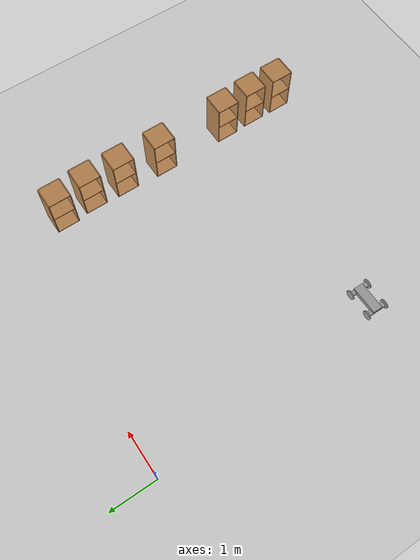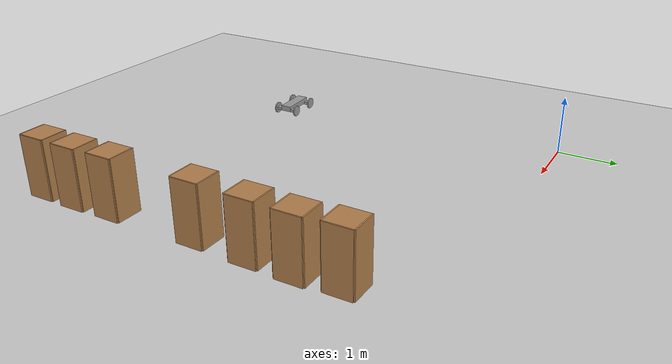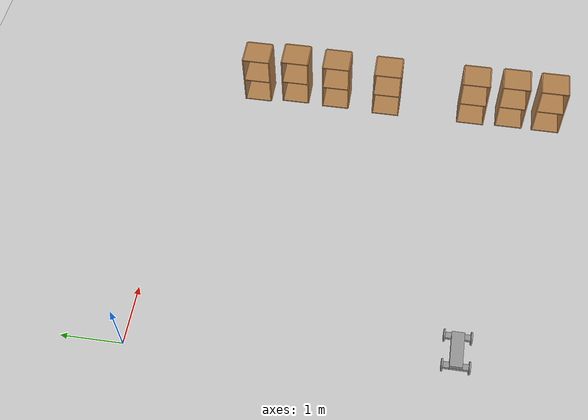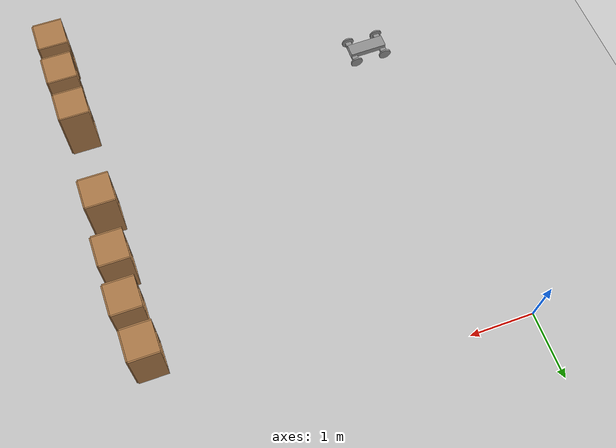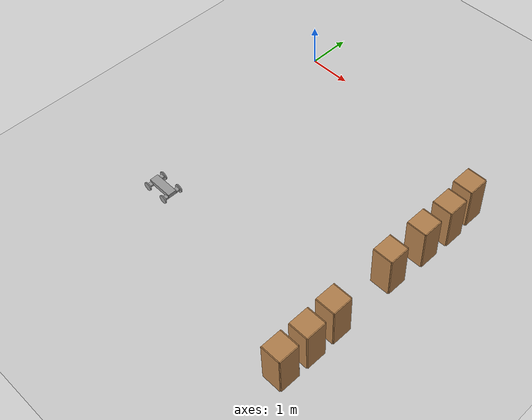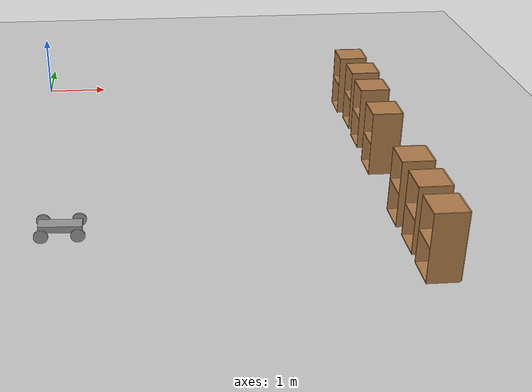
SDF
<sdf version="1.6">
 <world name="default">
  <model name="ground_plane">
   <static>1</static>
   <link name="link">
    <collision name="collision">
     <geometry><plane><normal>0 0 1</normal><size>100 100</size></plane></geometry>
     <surface>
      <contact><collide_bitmask>65535</collide_bitmask></contact>
      <friction><ode><mu>100</mu><mu2>50</mu2></ode></friction>
     </surface>
    </collision>
    <visual name="visual">
     <cast_shadows>0</cast_shadows>
     <geometry><plane><normal>0 0 1</normal><size>100 100</size></plane></geometry>
     <material>
      <script><uri>file://media/materials/scripts/gazebo.material</uri><name>Gazebo/Grey</name></script>
     </material>
    </visual>
   </link>
  </model>
  <model name="cabinet">
   <static>1</static>
   <link name="cabinet_bottom_plate">
    <inertial>
     <pose>0 0 -1 0 -0 0</pose>
     <inertia><ixx>2.05</ixx><ixy>0</ixy><ixz>0</ixz><iyy>2.05</iyy><iyz>0</iyz><izz>2.05</izz></inertia>
     <mass>25</mass>
    </inertial>
    <collision name="cabinet_bottom_plate_geom">
     <pose>0 0 0.01 0 -0 0</pose>
     <geometry><box><size>0.45 0.45 0.02</size></box></geometry>
    </collision>
    <visual name="cabinet_bottom_plate_geom_visual">
     <pose>0 0 0.01 0 -0 0</pose>
     <geometry><box><size>0.45 0.45 0.02</size></box></geometry>
     <material>
      <script><uri>file://media/materials/scripts/gazebo.material</uri><name>Gazebo/Wood</name></script>
     </material>
    </visual>
    <collision name="cabinet_bottom_plate_geom_cabinet_back_plate">
     <pose>0.235 0 0.51 0 -0 0</pose>
     <geometry><box><size>0.02 0.45 1.02</size></box></geometry>
    </collision>
    <visual name="cabinet_bottom_plate_geom_cabinet_back_plate_visual">
     <pose>0.235 0 0.51 0 -0 0</pose>
     <geometry><box><size>0.02 0.45 1.02</size></box></geometry>
     <material>
      <script><uri>file://media/materials/scripts/gazebo.material</uri><name>Gazebo/Wood</name></script>
     </material>
    </visual>
    <collision name="cabinet_bottom_plate_geom_cabinet_left_plate">
     <pose>0 0.235 0.51 0 -0 0</pose>
     <geometry><box><size>0.45 0.02 1.02</size></box></geometry>
    </collision>
    <visual name="cabinet_bottom_plate_geom_cabinet_left_plate_visual">
     <pose>0 0.235 0.51 0 -0 0</pose>
     <geometry><box><size>0.45 0.02 1.02</size></box></geometry>
     <material>
      <script><uri>file://media/materials/scripts/gazebo.material</uri><name>Gazebo/Wood</name></script>
     </material>
    </visual>
    <collision name="cabinet_bottom_plate_geom_cabinet_middle_plate">
     <pose>0 0 0.51 0 -0 0</pose>
     <geometry><box><size>0.45 0.45 0.02</size></box></geometry>
    </collision>
    <visual name="cabinet_bottom_plate_geom_cabinet_middle_plate_visual">
     <pose>0 0 0.51 0 -0 0</pose>
     <geometry><box><size>0.45 0.45 0.02</size></box></geometry>
     <material>
      <script><uri>file://media/materials/scripts/gazebo.material</uri><name>Gazebo/Wood</name></script>
     </material>
    </visual>
    <collision name="cabinet_bottom_plate_geom_cabinet_right_plate">
     <pose>0 -0.235 0.51 0 -0 0</pose>
     <geometry><box><size>0.45 0.02 1.02</size></box></geometry>
    </collision>
    <visual name="cabinet_bottom_plate_geom_cabinet_right_plate_visual">
     <pose>0 -0.235 0.51 0 -0 0</pose>
     <geometry><box><size>0.45 0.02 1.02</size></box></geometry>
     <material>
      <script><uri>file://media/materials/scripts/gazebo.material</uri><name>Gazebo/Wood</name></script>
     </material>
    </visual>
    <collision name="cabinet_bottom_plate_geom_cabinet_top_plate">
     <pose>0 0 1.01 0 -0 0</pose>
     <geometry><box><size>0.45 0.45 0.02</size></box></geometry>
    </collision>
    <visual name="cabinet_bottom_plate_geom_cabinet_top_plate_visual">
     <pose>0 0 1.01 0 -0 0</pose>
     <geometry><box><size>0.45 0.45 0.02</size></box></geometry>
     <material>
      <script><uri>file://media/materials/scripts/gazebo.material</uri><name>Gazebo/Wood</name></script>
     </material>
    </visual>
   </link>
   <pose>5.45289 -6.41094 0 0 -0 0</pose>
  </model>
  <model name="cabinet_0">
   <static>1</static>
   <link name="cabinet_bottom_plate">
    <inertial>
     <pose>0 0 -1 0 -0 0</pose>
     <inertia><ixx>2.05</ixx><ixy>0</ixy><ixz>0</ixz><iyy>2.05</iyy><iyz>0</iyz><izz>2.05</izz></inertia>
     <mass>25</mass>
    </inertial>
    <collision name="cabinet_bottom_plate_geom">
     <pose>0 0 0.01 0 -0 0</pose>
     <geometry><box><size>0.45 0.45 0.02</size></box></geometry>
    </collision>
    <visual name="cabinet_bottom_plate_geom_visual">
     <pose>0 0 0.01 0 -0 0</pose>
     <geometry><box><size>0.45 0.45 0.02</size></box></geometry>
     <material>
      <script><uri>file://media/materials/scripts/gazebo.material</uri><name>Gazebo/Wood</name></script>
     </material>
    </visual>
    <collision name="cabinet_bottom_plate_geom_cabinet_back_plate">
     <pose>0.235 0 0.51 0 -0 0</pose>
     <geometry><box><size>0.02 0.45 1.02</size></box></geometry>
    </collision>
    <visual name="cabinet_bottom_plate_geom_cabinet_back_plate_visual">
     <pose>0.235 0 0.51 0 -0 0</pose>
     <geometry><box><size>0.02 0.45 1.02</size></box></geometry>
     <material>
      <script><uri>file://media/materials/scripts/gazebo.material</uri><name>Gazebo/Wood</name></script>
     </material>
    </visual>
    <collision name="cabinet_bottom_plate_geom_cabinet_left_plate">
     <pose>0 0.235 0.51 0 -0 0</pose>
     <geometry><box><size>0.45 0.02 1.02</size></box></geometry>
    </collision>
    <visual name="cabinet_bottom_plate_geom_cabinet_left_plate_visual">
     <pose>0 0.235 0.51 0 -0 0</pose>
     <geometry><box><size>0.45 0.02 1.02</size></box></geometry>
     <material>
      <script><uri>file://media/materials/scripts/gazebo.material</uri><name>Gazebo/Wood</name></script>
     </material>
    </visual>
    <collision name="cabinet_bottom_plate_geom_cabinet_middle_plate">
     <pose>0 0 0.51 0 -0 0</pose>
     <geometry><box><size>0.45 0.45 0.02</size></box></geometry>
    </collision>
    <visual name="cabinet_bottom_plate_geom_cabinet_middle_plate_visual">
     <pose>0 0 0.51 0 -0 0</pose>
     <geometry><box><size>0.45 0.45 0.02</size></box></geometry>
     <material>
      <script><uri>file://media/materials/scripts/gazebo.material</uri><name>Gazebo/Wood</name></script>
     </material>
    </visual>
    <collision name="cabinet_bottom_plate_geom_cabinet_right_plate">
     <pose>0 -0.235 0.51 0 -0 0</pose>
     <geometry><box><size>0.45 0.02 1.02</size></box></geometry>
    </collision>
    <visual name="cabinet_bottom_plate_geom_cabinet_right_plate_visual">
     <pose>0 -0.235 0.51 0 -0 0</pose>
     <geometry><box><size>0.45 0.02 1.02</size></box></geometry>
     <material>
      <script><uri>file://media/materials/scripts/gazebo.material</uri><name>Gazebo/Wood</name></script>
     </material>
    </visual>
    <collision name="cabinet_bottom_plate_geom_cabinet_top_plate">
     <pose>0 0 1.01 0 -0 0</pose>
     <geometry><box><size>0.45 0.45 0.02</size></box></geometry>
    </collision>
    <visual name="cabinet_bottom_plate_geom_cabinet_top_plate_visual">
     <pose>0 0 1.01 0 -0 0</pose>
     <geometry><box><size>0.45 0.45 0.02</size></box></geometry>
     <material>
      <script><uri>file://media/materials/scripts/gazebo.material</uri><name>Gazebo/Wood</name></script>
     </material>
    </visual>
   </link>
   <pose>5.4602 -5.75038 0 0 -0 0</pose>
  </model>
  <model name="cabinet_1">
   <static>1</static>
   <link name="cabinet_bottom_plate">
    <inertial>
     <pose>0 0 -1 0 -0 0</pose>
     <inertia><ixx>2.05</ixx><ixy>0</ixy><ixz>0</ixz><iyy>2.05</iyy><iyz>0</iyz><izz>2.05</izz></inertia>
     <mass>25</mass>
    </inertial>
    <collision name="cabinet_bottom_plate_geom">
     <pose>0 0 0.01 0 -0 0</pose>
     <geometry><box><size>0.45 0.45 0.02</size></box></geometry>
    </collision>
    <visual name="cabinet_bottom_plate_geom_visual">
     <pose>0 0 0.01 0 -0 0</pose>
     <geometry><box><size>0.45 0.45 0.02</size></box></geometry>
     <material>
      <script><uri>file://media/materials/scripts/gazebo.material</uri><name>Gazebo/Wood</name></script>
     </material>
    </visual>
    <collision name="cabinet_bottom_plate_geom_cabinet_back_plate">
     <pose>0.235 0 0.51 0 -0 0</pose>
     <geometry><box><size>0.02 0.45 1.02</size></box></geometry>
    </collision>
    <visual name="cabinet_bottom_plate_geom_cabinet_back_plate_visual">
     <pose>0.235 0 0.51 0 -0 0</pose>
     <geometry><box><size>0.02 0.45 1.02</size></box></geometry>
     <material>
      <script><uri>file://media/materials/scripts/gazebo.material</uri><name>Gazebo/Wood</name></script>
     </material>
    </visual>
    <collision name="cabinet_bottom_plate_geom_cabinet_left_plate">
     <pose>0 0.235 0.51 0 -0 0</pose>
     <geometry><box><size>0.45 0.02 1.02</size></box></geometry>
    </collision>
    <visual name="cabinet_bottom_plate_geom_cabinet_left_plate_visual">
     <pose>0 0.235 0.51 0 -0 0</pose>
     <geometry><box><size>0.45 0.02 1.02</size></box></geometry>
     <material>
      <script><uri>file://media/materials/scripts/gazebo.material</uri><name>Gazebo/Wood</name></script>
     </material>
    </visual>
    <collision name="cabinet_bottom_plate_geom_cabinet_middle_plate">
     <pose>0 0 0.51 0 -0 0</pose>
     <geometry><box><size>0.45 0.45 0.02</size></box></geometry>
    </collision>
    <visual name="cabinet_bottom_plate_geom_cabinet_middle_plate_visual">
     <pose>0 0 0.51 0 -0 0</pose>
     <geometry><box><size>0.45 0.45 0.02</size></box></geometry>
     <material>
      <script><uri>file://media/materials/scripts/gazebo.material</uri><name>Gazebo/Wood</name></script>
     </material>
    </visual>
    <collision name="cabinet_bottom_plate_geom_cabinet_right_plate">
     <pose>0 -0.235 0.51 0 -0 0</pose>
     <geometry><box><size>0.45 0.02 1.02</size></box></geometry>
    </collision>
    <visual name="cabinet_bottom_plate_geom_cabinet_right_plate_visual">
     <pose>0 -0.235 0.51 0 -0 0</pose>
     <geometry><box><size>0.45 0.02 1.02</size></box></geometry>
     <material>
      <script><uri>file://media/materials/scripts/gazebo.material</uri><name>Gazebo/Wood</name></script>
     </material>
    </visual>
    <collision name="cabinet_bottom_plate_geom_cabinet_top_plate">
     <pose>0 0 1.01 0 -0 0</pose>
     <geometry><box><size>0.45 0.45 0.02</size></box></geometry>
    </collision>
    <visual name="cabinet_bottom_plate_geom_cabinet_top_plate_visual">
     <pose>0 0 1.01 0 -0 0</pose>
     <geometry><box><size>0.45 0.45 0.02</size></box></geometry>
     <material>
      <script><uri>file://media/materials/scripts/gazebo.material</uri><name>Gazebo/Wood</name></script>
     </material>
    </visual>
   </link>
   <pose>5.43996 -5.05539 0 0 -0 0</pose>
  </model>
  <model name="cabinet_2">
   <static>1</static>
   <link name="cabinet_bottom_plate">
    <inertial>
     <pose>0 0 -1 0 -0 0</pose>
     <inertia><ixx>2.05</ixx><ixy>0</ixy><ixz>0</ixz><iyy>2.05</iyy><iyz>0</iyz><izz>2.05</izz></inertia>
     <mass>25</mass>
    </inertial>
    <collision name="cabinet_bottom_plate_geom">
     <pose>0 0 0.01 0 -0 0</pose>
     <geometry><box><size>0.45 0.45 0.02</size></box></geometry>
    </collision>
    <visual name="cabinet_bottom_plate_geom_visual">
     <pose>0 0 0.01 0 -0 0</pose>
     <geometry><box><size>0.45 0.45 0.02</size></box></geometry>
     <material>
      <script><uri>file://media/materials/scripts/gazebo.material</uri><name>Gazebo/Wood</name></script>
     </material>
    </visual>
    <collision name="cabinet_bottom_plate_geom_cabinet_back_plate">
     <pose>0.235 0 0.51 0 -0 0</pose>
     <geometry><box><size>0.02 0.45 1.02</size></box></geometry>
    </collision>
    <visual name="cabinet_bottom_plate_geom_cabinet_back_plate_visual">
     <pose>0.235 0 0.51 0 -0 0</pose>
     <geometry><box><size>0.02 0.45 1.02</size></box></geometry>
     <material>
      <script><uri>file://media/materials/scripts/gazebo.material</uri><name>Gazebo/Wood</name></script>
     </material>
    </visual>
    <collision name="cabinet_bottom_plate_geom_cabinet_left_plate">
     <pose>0 0.235 0.51 0 -0 0</pose>
     <geometry><box><size>0.45 0.02 1.02</size></box></geometry>
    </collision>
    <visual name="cabinet_bottom_plate_geom_cabinet_left_plate_visual">
     <pose>0 0.235 0.51 0 -0 0</pose>
     <geometry><box><size>0.45 0.02 1.02</size></box></geometry>
     <material>
      <script><uri>file://media/materials/scripts/gazebo.material</uri><name>Gazebo/Wood</name></script>
     </material>
    </visual>
    <collision name="cabinet_bottom_plate_geom_cabinet_middle_plate">
     <pose>0 0 0.51 0 -0 0</pose>
     <geometry><box><size>0.45 0.45 0.02</size></box></geometry>
    </collision>
    <visual name="cabinet_bottom_plate_geom_cabinet_middle_plate_visual">
     <pose>0 0 0.51 0 -0 0</pose>
     <geometry><box><size>0.45 0.45 0.02</size></box></geometry>
     <material>
      <script><uri>file://media/materials/scripts/gazebo.material</uri><name>Gazebo/Wood</name></script>
     </material>
    </visual>
    <collision name="cabinet_bottom_plate_geom_cabinet_right_plate">
     <pose>0 -0.235 0.51 0 -0 0</pose>
     <geometry><box><size>0.45 0.02 1.02</size></box></geometry>
    </collision>
    <visual name="cabinet_bottom_plate_geom_cabinet_right_plate_visual">
     <pose>0 -0.235 0.51 0 -0 0</pose>
     <geometry><box><size>0.45 0.02 1.02</size></box></geometry>
     <material>
      <script><uri>file://media/materials/scripts/gazebo.material</uri><name>Gazebo/Wood</name></script>
     </material>
    </visual>
    <collision name="cabinet_bottom_plate_geom_cabinet_top_plate">
     <pose>0 0 1.01 0 -0 0</pose>
     <geometry><box><size>0.45 0.45 0.02</size></box></geometry>
    </collision>
    <visual name="cabinet_bottom_plate_geom_cabinet_top_plate_visual">
     <pose>0 0 1.01 0 -0 0</pose>
     <geometry><box><size>0.45 0.45 0.02</size></box></geometry>
     <material>
      <script><uri>file://media/materials/scripts/gazebo.material</uri><name>Gazebo/Wood</name></script>
     </material>
    </visual>
   </link>
   <pose>5.4302 -3.50598 0 0 -0 0</pose>
  </model>
  <model name="cabinet_3">
   <static>1</static>
   <link name="cabinet_bottom_plate">
    <inertial>
     <pose>0 0 -1 0 -0 0</pose>
     <inertia><ixx>2.05</ixx><ixy>0</ixy><ixz>0</ixz><iyy>2.05</iyy><iyz>0</iyz><izz>2.05</izz></inertia>
     <mass>25</mass>
    </inertial>
    <collision name="cabinet_bottom_plate_geom">
     <pose>0 0 0.01 0 -0 0</pose>
     <geometry><box><size>0.45 0.45 0.02</size></box></geometry>
    </collision>
    <visual name="cabinet_bottom_plate_geom_visual">
     <pose>0 0 0.01 0 -0 0</pose>
     <geometry><box><size>0.45 0.45 0.02</size></box></geometry>
     <material>
      <script><uri>file://media/materials/scripts/gazebo.material</uri><name>Gazebo/Wood</name></script>
     </material>
    </visual>
    <collision name="cabinet_bottom_plate_geom_cabinet_back_plate">
     <pose>0.235 0 0.51 0 -0 0</pose>
     <geometry><box><size>0.02 0.45 1.02</size></box></geometry>
    </collision>
    <visual name="cabinet_bottom_plate_geom_cabinet_back_plate_visual">
     <pose>0.235 0 0.51 0 -0 0</pose>
     <geometry><box><size>0.02 0.45 1.02</size></box></geometry>
     <material>
      <script><uri>file://media/materials/scripts/gazebo.material</uri><name>Gazebo/Wood</name></script>
     </material>
    </visual>
    <collision name="cabinet_bottom_plate_geom_cabinet_left_plate">
     <pose>0 0.235 0.51 0 -0 0</pose>
     <geometry><box><size>0.45 0.02 1.02</size></box></geometry>
    </collision>
    <visual name="cabinet_bottom_plate_geom_cabinet_left_plate_visual">
     <pose>0 0.235 0.51 0 -0 0</pose>
     <geometry><box><size>0.45 0.02 1.02</size></box></geometry>
     <material>
      <script><uri>file://media/materials/scripts/gazebo.material</uri><name>Gazebo/Wood</name></script>
     </material>
    </visual>
    <collision name="cabinet_bottom_plate_geom_cabinet_middle_plate">
     <pose>0 0 0.51 0 -0 0</pose>
     <geometry><box><size>0.45 0.45 0.02</size></box></geometry>
    </collision>
    <visual name="cabinet_bottom_plate_geom_cabinet_middle_plate_visual">
     <pose>0 0 0.51 0 -0 0</pose>
     <geometry><box><size>0.45 0.45 0.02</size></box></geometry>
     <material>
      <script><uri>file://media/materials/scripts/gazebo.material</uri><name>Gazebo/Wood</name></script>
     </material>
    </visual>
    <collision name="cabinet_bottom_plate_geom_cabinet_right_plate">
     <pose>0 -0.235 0.51 0 -0 0</pose>
     <geometry><box><size>0.45 0.02 1.02</size></box></geometry>
    </collision>
    <visual name="cabinet_bottom_plate_geom_cabinet_right_plate_visual">
     <pose>0 -0.235 0.51 0 -0 0</pose>
     <geometry><box><size>0.45 0.02 1.02</size></box></geometry>
     <material>
      <script><uri>file://media/materials/scripts/gazebo.material</uri><name>Gazebo/Wood</name></script>
     </material>
    </visual>
    <collision name="cabinet_bottom_plate_geom_cabinet_top_plate">
     <pose>0 0 1.01 0 -0 0</pose>
     <geometry><box><size>0.45 0.45 0.02</size></box></geometry>
    </collision>
    <visual name="cabinet_bottom_plate_geom_cabinet_top_plate_visual">
     <pose>0 0 1.01 0 -0 0</pose>
     <geometry><box><size>0.45 0.45 0.02</size></box></geometry>
     <material>
      <script><uri>file://media/materials/scripts/gazebo.material</uri><name>Gazebo/Wood</name></script>
     </material>
    </visual>
   </link>
   <pose>5.46499 -2.58027 0 0 -0 0</pose>
  </model>
  <model name="cabinet_4">
   <static>1</static>
   <link name="cabinet_bottom_plate">
    <inertial>
     <pose>0 0 -1 0 -0 0</pose>
     <inertia><ixx>2.05</ixx><ixy>0</ixy><ixz>0</ixz><iyy>2.05</iyy><iyz>0</iyz><izz>2.05</izz></inertia>
     <mass>25</mass>
    </inertial>
    <collision name="cabinet_bottom_plate_geom">
     <pose>0 0 0.01 0 -0 0</pose>
     <geometry><box><size>0.45 0.45 0.02</size></box></geometry>
    </collision>
    <visual name="cabinet_bottom_plate_geom_visual">
     <pose>0 0 0.01 0 -0 0</pose>
     <geometry><box><size>0.45 0.45 0.02</size></box></geometry>
     <material>
      <script><uri>file://media/materials/scripts/gazebo.material</uri><name>Gazebo/Wood</name></script>
     </material>
    </visual>
    <collision name="cabinet_bottom_plate_geom_cabinet_back_plate">
     <pose>0.235 0 0.51 0 -0 0</pose>
     <geometry><box><size>0.02 0.45 1.02</size></box></geometry>
    </collision>
    <visual name="cabinet_bottom_plate_geom_cabinet_back_plate_visual">
     <pose>0.235 0 0.51 0 -0 0</pose>
     <geometry><box><size>0.02 0.45 1.02</size></box></geometry>
     <material>
      <script><uri>file://media/materials/scripts/gazebo.material</uri><name>Gazebo/Wood</name></script>
     </material>
    </visual>
    <collision name="cabinet_bottom_plate_geom_cabinet_left_plate">
     <pose>0 0.235 0.51 0 -0 0</pose>
     <geometry><box><size>0.45 0.02 1.02</size></box></geometry>
    </collision>
    <visual name="cabinet_bottom_plate_geom_cabinet_left_plate_visual">
     <pose>0 0.235 0.51 0 -0 0</pose>
     <geometry><box><size>0.45 0.02 1.02</size></box></geometry>
     <material>
      <script><uri>file://media/materials/scripts/gazebo.material</uri><name>Gazebo/Wood</name></script>
     </material>
    </visual>
    <collision name="cabinet_bottom_plate_geom_cabinet_middle_plate">
     <pose>0 0 0.51 0 -0 0</pose>
     <geometry><box><size>0.45 0.45 0.02</size></box></geometry>
    </collision>
    <visual name="cabinet_bottom_plate_geom_cabinet_middle_plate_visual">
     <pose>0 0 0.51 0 -0 0</pose>
     <geometry><box><size>0.45 0.45 0.02</size></box></geometry>
     <material>
      <script><uri>file://media/materials/scripts/gazebo.material</uri><name>Gazebo/Wood</name></script>
     </material>
    </visual>
    <collision name="cabinet_bottom_plate_geom_cabinet_right_plate">
     <pose>0 -0.235 0.51 0 -0 0</pose>
     <geometry><box><size>0.45 0.02 1.02</size></box></geometry>
    </collision>
    <visual name="cabinet_bottom_plate_geom_cabinet_right_plate_visual">
     <pose>0 -0.235 0.51 0 -0 0</pose>
     <geometry><box><size>0.45 0.02 1.02</size></box></geometry>
     <material>
      <script><uri>file://media/materials/scripts/gazebo.material</uri><name>Gazebo/Wood</name></script>
     </material>
    </visual>
    <collision name="cabinet_bottom_plate_geom_cabinet_top_plate">
     <pose>0 0 1.01 0 -0 0</pose>
     <geometry><box><size>0.45 0.45 0.02</size></box></geometry>
    </collision>
    <visual name="cabinet_bottom_plate_geom_cabinet_top_plate_visual">
     <pose>0 0 1.01 0 -0 0</pose>
     <geometry><box><size>0.45 0.45 0.02</size></box></geometry>
     <material>
      <script><uri>file://media/materials/scripts/gazebo.material</uri><name>Gazebo/Wood</name></script>
     </material>
    </visual>
   </link>
   <pose>5.48756 -1.83989 0 0 -0 0</pose>
  </model>
  <model name="cabinet_5">
   <static>1</static>
   <link name="cabinet_bottom_plate">
    <inertial>
     <pose>0 0 -1 0 -0 0</pose>
     <inertia><ixx>2.05</ixx><ixy>0</ixy><ixz>0</ixz><iyy>2.05</iyy><iyz>0</iyz><izz>2.05</izz></inertia>
     <mass>25</mass>
    </inertial>
    <collision name="cabinet_bottom_plate_geom">
     <pose>0 0 0.01 0 -0 0</pose>
     <geometry><box><size>0.45 0.45 0.02</size></box></geometry>
    </collision>
    <visual name="cabinet_bottom_plate_geom_visual">
     <pose>0 0 0.01 0 -0 0</pose>
     <geometry><box><size>0.45 0.45 0.02</size></box></geometry>
     <material>
      <script><uri>file://media/materials/scripts/gazebo.material</uri><name>Gazebo/Wood</name></script>
     </material>
    </visual>
    <collision name="cabinet_bottom_plate_geom_cabinet_back_plate">
     <pose>0.235 0 0.51 0 -0 0</pose>
     <geometry><box><size>0.02 0.45 1.02</size></box></geometry>
    </collision>
    <visual name="cabinet_bottom_plate_geom_cabinet_back_plate_visual">
     <pose>0.235 0 0.51 0 -0 0</pose>
     <geometry><box><size>0.02 0.45 1.02</size></box></geometry>
     <material>
      <script><uri>file://media/materials/scripts/gazebo.material</uri><name>Gazebo/Wood</name></script>
     </material>
    </visual>
    <collision name="cabinet_bottom_plate_geom_cabinet_left_plate">
     <pose>0 0.235 0.51 0 -0 0</pose>
     <geometry><box><size>0.45 0.02 1.02</size></box></geometry>
    </collision>
    <visual name="cabinet_bottom_plate_geom_cabinet_left_plate_visual">
     <pose>0 0.235 0.51 0 -0 0</pose>
     <geometry><box><size>0.45 0.02 1.02</size></box></geometry>
     <material>
      <script><uri>file://media/materials/scripts/gazebo.material</uri><name>Gazebo/Wood</name></script>
     </material>
    </visual>
    <collision name="cabinet_bottom_plate_geom_cabinet_middle_plate">
     <pose>0 0 0.51 0 -0 0</pose>
     <geometry><box><size>0.45 0.45 0.02</size></box></geometry>
    </collision>
    <visual name="cabinet_bottom_plate_geom_cabinet_middle_plate_visual">
     <pose>0 0 0.51 0 -0 0</pose>
     <geometry><box><size>0.45 0.45 0.02</size></box></geometry>
     <material>
      <script><uri>file://media/materials/scripts/gazebo.material</uri><name>Gazebo/Wood</name></script>
     </material>
    </visual>
    <collision name="cabinet_bottom_plate_geom_cabinet_right_plate">
     <pose>0 -0.235 0.51 0 -0 0</pose>
     <geometry><box><size>0.45 0.02 1.02</size></box></geometry>
    </collision>
    <visual name="cabinet_bottom_plate_geom_cabinet_right_plate_visual">
     <pose>0 -0.235 0.51 0 -0 0</pose>
     <geometry><box><size>0.45 0.02 1.02</size></box></geometry>
     <material>
      <script><uri>file://media/materials/scripts/gazebo.material</uri><name>Gazebo/Wood</name></script>
     </material>
    </visual>
    <collision name="cabinet_bottom_plate_geom_cabinet_top_plate">
     <pose>0 0 1.01 0 -0 0</pose>
     <geometry><box><size>0.45 0.45 0.02</size></box></geometry>
    </collision>
    <visual name="cabinet_bottom_plate_geom_cabinet_top_plate_visual">
     <pose>0 0 1.01 0 -0 0</pose>
     <geometry><box><size>0.45 0.45 0.02</size></box></geometry>
     <material>
      <script><uri>file://media/materials/scripts/gazebo.material</uri><name>Gazebo/Wood</name></script>
     </material>
    </visual>
   </link>
   <pose>5.43526 -1.15089 0 0 -0 0</pose>
  </model>
  <model name="Four_Wheel_Model_0">
   <link name="link_0">
    <pose>0 0 0.2 -6e-06 -0 1.5e-05</pose>
    <inertial>
     <mass>1</mass>
     <inertia>
      <ixx>0.166667</ixx>
      <ixy>0</ixy>
      <ixz>0</ixz>
      <iyy>0.166667</iyy>
      <iyz>0</iyz>
      <izz>0.166667</izz>
     </inertia>
    </inertial>
    <visual name="visual">
     <geometry><box><size>0.6 0.2 0.1</size></box></geometry>
     <material>
      <lighting>1</lighting>
      <script><uri>file://media/materials/scripts/gazebo.material</uri><name>Gazebo/Grey</name></script>
      <ambient>0.3 0.3 0.3 1</ambient>
      <diffuse>0.7 0.7 0.7 1</diffuse>
      <specular>0.01 0.01 0.01 1</specular>
      <emissive>0 0 0 1</emissive>
      <shader type="vertex"><normal_map>__default__</normal_map></shader>
     </material>
    </visual>
    <collision name="collision">
     <geometry><box><size>0.6 0.2 0.1</size></box></geometry>
     <surface>
      <friction>
       <ode><mu>1</mu><mu2>1</mu2><fdir1>0 0 0</fdir1><slip1>0</slip1><slip2>0</slip2></ode>
       <torsional>
        <coefficient>1</coefficient>
        <patch_radius>0</patch_radius>
        <surface_radius>0</surface_radius>
        <use_patch_radius>1</use_patch_radius>
        <ode><slip>0</slip></ode>
       </torsional>
      </friction>
      <bounce><restitution_coefficient>0</restitution_coefficient><threshold>1e+06</threshold></bounce>
      <contact>
       <collide_without_contact>0</collide_without_contact>
       <collide_without_contact_bitmask>1</collide_without_contact_bitmask>
       <collide_bitmask>1</collide_bitmask>
       <ode>
        <soft_cfm>0</soft_cfm>
        <soft_erp>0.2</soft_erp>
        <kp>1e+13</kp>
        <kd>1</kd>
        <max_vel>0.01</max_vel>
        <min_depth>0</min_depth>
       </ode>
       <bullet>
        <split_impulse>1</split_impulse>
        <split_impulse_penetration_threshold>-0.01</split_impulse_penetration_threshold>
        <soft_cfm>0</soft_cfm>
        <soft_erp>0.2</soft_erp>
        <kp>1e+13</kp>
        <kd>1</kd>
       </bullet>
      </contact>
     </surface>
    </collision>
   </link>
   <link name="link_0_0">
    <pose>-0.250001 0 0.162322 -6e-06 0 0</pose>
    <inertial>
     <mass>1</mass>
     <inertia>
      <ixx>0.166667</ixx>
      <ixy>0</ixy>
      <ixz>0</ixz>
      <iyy>0.166667</iyy>
      <iyz>0</iyz>
      <izz>0.166667</izz>
     </inertia>
    </inertial>
    <visual name="visual">
     <geometry><box><size>0.1 0.4 0.05</size></box></geometry>
     <material>
      <lighting>1</lighting>
      <script><uri>file://media/materials/scripts/gazebo.material</uri><name>Gazebo/Grey</name></script>
      <shader type="pixel"><normal_map>__default__</normal_map></shader>
      <ambient>0.3 0.3 0.3 1</ambient>
      <diffuse>0.7 0.7 0.7 1</diffuse>
      <specular>0.01 0.01 0.01 1</specular>
      <emissive>0 0 0 1</emissive>
     </material>
    </visual>
    <collision name="collision">
     <geometry><box><size>0.1 0.4 0.05</size></box></geometry>
     <surface>
      <friction>
       <ode><mu>1</mu><mu2>1</mu2><fdir1>0 0 0</fdir1><slip1>0</slip1><slip2>0</slip2></ode>
       <torsional>
        <coefficient>1</coefficient>
        <patch_radius>0</patch_radius>
        <surface_radius>0</surface_radius>
        <use_patch_radius>1</use_patch_radius>
        <ode><slip>0</slip></ode>
       </torsional>
      </friction>
      <bounce><restitution_coefficient>0</restitution_coefficient><threshold>1e+06</threshold></bounce>
      <contact>
       <collide_without_contact>0</collide_without_contact>
       <collide_without_contact_bitmask>1</collide_without_contact_bitmask>
       <collide_bitmask>1</collide_bitmask>
       <ode>
        <soft_cfm>0</soft_cfm>
        <soft_erp>0.2</soft_erp>
        <kp>1e+13</kp>
        <kd>1</kd>
        <max_vel>0.01</max_vel>
        <min_depth>0</min_depth>
       </ode>
       <bullet>
        <split_impulse>1</split_impulse>
        <split_impulse_penetration_threshold>-0.01</split_impulse_penetration_threshold>
        <soft_cfm>0</soft_cfm>
        <soft_erp>0.2</soft_erp>
        <kp>1e+13</kp>
        <kd>1</kd>
       </bullet>
      </contact>
     </surface>
    </collision>
   </link>
   <link name="link_0_clone_clone">
    <pose>0.249959 4e-06 0.175 -0 6e-06 1.57102</pose>
    <inertial>
     <mass>1</mass>
     <inertia>
      <ixx>0.166667</ixx>
      <ixy>0</ixy>
      <ixz>0</ixz>
      <iyy>0.166667</iyy>
      <iyz>0</iyz>
      <izz>0.166667</izz>
     </inertia>
    </inertial>
    <visual name="visual">
     <geometry><box><size>0.4 0.1 0.05</size></box></geometry>
     <material>
      <lighting>1</lighting>
      <script><uri>file://media/materials/scripts/gazebo.material</uri><name>Gazebo/Grey</name></script>
      <ambient>0.3 0.3 0.3 1</ambient>
      <diffuse>0.7 0.7 0.7 1</diffuse>
      <specular>0.01 0.01 0.01 1</specular>
      <emissive>0 0 0 1</emissive>
      <shader type="vertex"><normal_map>__default__</normal_map></shader>
     </material>
    </visual>
    <collision name="collision">
     <geometry><box><size>0.4 0.1 0.05</size></box></geometry>
     <surface>
      <friction>
       <ode><mu>1</mu><mu2>1</mu2><fdir1>0 0 0</fdir1><slip1>0</slip1><slip2>0</slip2></ode>
       <torsional>
        <coefficient>1</coefficient>
        <patch_radius>0</patch_radius>
        <surface_radius>0</surface_radius>
        <use_patch_radius>1</use_patch_radius>
        <ode><slip>0</slip></ode>
       </torsional>
      </friction>
      <bounce><restitution_coefficient>0</restitution_coefficient><threshold>1e+06</threshold></bounce>
      <contact>
       <collide_without_contact>0</collide_without_contact>
       <collide_without_contact_bitmask>1</collide_without_contact_bitmask>
       <collide_bitmask>1</collide_bitmask>
       <ode>
        <soft_cfm>0</soft_cfm>
        <soft_erp>0.2</soft_erp>
        <kp>1e+13</kp>
        <kd>1</kd>
        <max_vel>0.01</max_vel>
        <min_depth>0</min_depth>
       </ode>
       <bullet>
        <split_impulse>1</split_impulse>
        <split_impulse_penetration_threshold>-0.01</split_impulse_penetration_threshold>
        <soft_cfm>0</soft_cfm>
        <soft_erp>0.2</soft_erp>
        <kp>1e+13</kp>
        <kd>1</kd>
       </bullet>
      </contact>
     </surface>
    </collision>
   </link>
   <link name="link_1">
    <pose>0.250006 -0.209996 0.175001 -1.57012 1.57059 -3.14111</pose>
    <inertial>
     <mass>1</mass>
     <inertia><ixx>0.145833</ixx><ixy>0</ixy><ixz>0</ixz><iyy>0.145833</iyy><iyz>0</iyz><izz>0.125</izz></inertia>
    </inertial>
    <visual name="visual">
     <geometry><cylinder><radius>0.1</radius><length>0.025</length></cylinder></geometry>
     <material>
      <lighting>1</lighting>
      <script><uri>file://media/materials/scripts/gazebo.material</uri><name>Gazebo/Grey</name></script>
      <shader type="pixel"><normal_map>__default__</normal_map></shader>
      <ambient>0.3 0.3 0.3 1</ambient>
      <diffuse>0.7 0.7 0.7 1</diffuse>
      <specular>0.01 0.01 0.01 1</specular>
      <emissive>0 0 0 1</emissive>
     </material>
    </visual>
    <collision name="collision">
     <geometry><cylinder><radius>0.1</radius><length>0.025</length></cylinder></geometry>
     <surface>
      <friction>
       <ode><mu>1</mu><mu2>1</mu2><fdir1>0 0 0</fdir1><slip1>0</slip1><slip2>0</slip2></ode>
       <torsional>
        <coefficient>1</coefficient>
        <patch_radius>0</patch_radius>
        <surface_radius>0</surface_radius>
        <use_patch_radius>1</use_patch_radius>
        <ode><slip>0</slip></ode>
       </torsional>
      </friction>
      <bounce><restitution_coefficient>0</restitution_coefficient><threshold>1e+06</threshold></bounce>
      <contact>
       <collide_without_contact>0</collide_without_contact>
       <collide_without_contact_bitmask>1</collide_without_contact_bitmask>
       <collide_bitmask>1</collide_bitmask>
       <ode>
        <soft_cfm>0</soft_cfm>
        <soft_erp>0.2</soft_erp>
        <kp>1e+13</kp>
        <kd>1</kd>
        <max_vel>0.01</max_vel>
        <min_depth>0</min_depth>
       </ode>
       <bullet>
        <split_impulse>1</split_impulse>
        <split_impulse_penetration_threshold>-0.01</split_impulse_penetration_threshold>
        <soft_cfm>0</soft_cfm>
        <soft_erp>0.2</soft_erp>
        <kp>1e+13</kp>
        <kd>1</kd>
       </bullet>
      </contact>
     </surface>
    </collision>
   </link>
   <link name="link_1_0">
    <pose>0.249912 0.210004 0.174999 -1.5707 1.57059 3.14149</pose>
    <inertial>
     <mass>1</mass>
     <inertia><ixx>0.145833</ixx><ixy>0</ixy><ixz>0</ixz><iyy>0.145833</iyy><iyz>0</iyz><izz>0.125</izz></inertia>
    </inertial>
    <visual name="visual">
     <geometry><cylinder><radius>0.1</radius><length>0.025</length></cylinder></geometry>
     <material>
      <lighting>1</lighting>
      <script><uri>file://media/materials/scripts/gazebo.material</uri><name>Gazebo/Grey</name></script>
      <shader type="pixel"><normal_map>__default__</normal_map></shader>
      <ambient>0.3 0.3 0.3 1</ambient>
      <diffuse>0.7 0.7 0.7 1</diffuse>
      <specular>0.01 0.01 0.01 1</specular>
      <emissive>0 0 0 1</emissive>
     </material>
    </visual>
    <collision name="collision">
     <geometry><cylinder><radius>0.1</radius><length>0.025</length></cylinder></geometry>
     <surface>
      <friction>
       <ode><mu>1</mu><mu2>1</mu2><fdir1>0 0 0</fdir1><slip1>0</slip1><slip2>0</slip2></ode>
       <torsional>
        <coefficient>1</coefficient>
        <patch_radius>0</patch_radius>
        <surface_radius>0</surface_radius>
        <use_patch_radius>1</use_patch_radius>
        <ode><slip>0</slip></ode>
       </torsional>
      </friction>
      <bounce><restitution_coefficient>0</restitution_coefficient><threshold>1e+06</threshold></bounce>
      <contact>
       <collide_without_contact>0</collide_without_contact>
       <collide_without_contact_bitmask>1</collide_without_contact_bitmask>
       <collide_bitmask>1</collide_bitmask>
       <ode>
        <soft_cfm>0</soft_cfm>
        <soft_erp>0.2</soft_erp>
        <kp>1e+13</kp>
        <kd>1</kd>
        <max_vel>0.01</max_vel>
        <min_depth>0</min_depth>
       </ode>
       <bullet>
        <split_impulse>1</split_impulse>
        <split_impulse_penetration_threshold>-0.01</split_impulse_penetration_threshold>
        <soft_cfm>0</soft_cfm>
        <soft_erp>0.2</soft_erp>
        <kp>1e+13</kp>
        <kd>1</kd>
       </bullet>
      </contact>
     </surface>
    </collision>
   </link>
   <link name="link_2">
    <pose>-0.250001 -0.21 0.162323 -1.56983 1.57059 -3.14083</pose>
    <inertial>
     <mass>1</mass>
     <inertia><ixx>0.145833</ixx><ixy>0</ixy><ixz>0</ixz><iyy>0.145833</iyy><iyz>0</iyz><izz>0.125</izz></inertia>
    </inertial>
    <visual name="visual">
     <geometry><cylinder><radius>0.1</radius><length>0.025</length></cylinder></geometry>
     <material>
      <lighting>1</lighting>
      <script><uri>file://media/materials/scripts/gazebo.material</uri><name>Gazebo/Grey</name></script>
      <shader type="pixel"><normal_map>__default__</normal_map></shader>
      <ambient>0.3 0.3 0.3 1</ambient>
      <diffuse>0.7 0.7 0.7 1</diffuse>
      <specular>0.01 0.01 0.01 1</specular>
      <emissive>0 0 0 1</emissive>
     </material>
    </visual>
    <collision name="collision">
     <geometry><cylinder><radius>0.1</radius><length>0.025</length></cylinder></geometry>
     <surface>
      <friction>
       <ode><mu>1</mu><mu2>1</mu2><fdir1>0 0 0</fdir1><slip1>0</slip1><slip2>0</slip2></ode>
       <torsional>
        <coefficient>1</coefficient>
        <patch_radius>0</patch_radius>
        <surface_radius>0</surface_radius>
        <use_patch_radius>1</use_patch_radius>
        <ode><slip>0</slip></ode>
       </torsional>
      </friction>
      <bounce><restitution_coefficient>0</restitution_coefficient><threshold>1e+06</threshold></bounce>
      <contact>
       <collide_without_contact>0</collide_without_contact>
       <collide_without_contact_bitmask>1</collide_without_contact_bitmask>
       <collide_bitmask>1</collide_bitmask>
       <ode>
        <soft_cfm>0</soft_cfm>
        <soft_erp>0.2</soft_erp>
        <kp>1e+13</kp>
        <kd>1</kd>
        <max_vel>0.01</max_vel>
        <min_depth>0</min_depth>
       </ode>
       <bullet>
        <split_impulse>1</split_impulse>
        <split_impulse_penetration_threshold>-0.01</split_impulse_penetration_threshold>
        <soft_cfm>0</soft_cfm>
        <soft_erp>0.2</soft_erp>
        <kp>1e+13</kp>
        <kd>1</kd>
       </bullet>
      </contact>
     </surface>
    </collision>
   </link>
   <link name="link_3">
    <pose>-0.250001 0.21 0.162321 -1.57041 1.57059 -3.14141</pose>
    <inertial>
     <mass>1</mass>
     <inertia><ixx>0.145833</ixx><ixy>0</ixy><ixz>0</ixz><iyy>0.145833</iyy><iyz>0</iyz><izz>0.125</izz></inertia>
    </inertial>
    <visual name="visual">
     <geometry><cylinder><radius>0.1</radius><length>0.025</length></cylinder></geometry>
     <material>
      <lighting>1</lighting>
      <script><uri>file://media/materials/scripts/gazebo.material</uri><name>Gazebo/Grey</name></script>
      <shader type="pixel"><normal_map>__default__</normal_map></shader>
      <ambient>0.3 0.3 0.3 1</ambient>
      <diffuse>0.7 0.7 0.7 1</diffuse>
      <specular>0.01 0.01 0.01 1</specular>
      <emissive>0 0 0 1</emissive>
     </material>
    </visual>
    <collision name="collision">
     <geometry><cylinder><radius>0.1</radius><length>0.025</length></cylinder></geometry>
     <surface>
      <friction>
       <ode><mu>1</mu><mu2>1</mu2><fdir1>0 0 0</fdir1><slip1>0</slip1><slip2>0</slip2></ode>
       <torsional>
        <coefficient>1</coefficient>
        <patch_radius>0</patch_radius>
        <surface_radius>0</surface_radius>
        <use_patch_radius>1</use_patch_radius>
        <ode><slip>0</slip></ode>
       </torsional>
      </friction>
      <bounce><restitution_coefficient>0</restitution_coefficient><threshold>1e+06</threshold></bounce>
      <contact>
       <collide_without_contact>0</collide_without_contact>
       <collide_without_contact_bitmask>1</collide_without_contact_bitmask>
       <collide_bitmask>1</collide_bitmask>
       <ode>
        <soft_cfm>0</soft_cfm>
        <soft_erp>0.2</soft_erp>
        <kp>1e+13</kp>
        <kd>1</kd>
        <max_vel>0.01</max_vel>
        <min_depth>0</min_depth>
       </ode>
       <bullet>
        <split_impulse>1</split_impulse>
        <split_impulse_penetration_threshold>-0.01</split_impulse_penetration_threshold>
        <soft_cfm>0</soft_cfm>
        <soft_erp>0.2</soft_erp>
        <kp>1e+13</kp>
        <kd>1</kd>
       </bullet>
      </contact>
     </surface>
    </collision>
   </link>
   <joint name="link_0_0_JOINT_7" type="revolute">
    <parent>link_0_0</parent>
    <child>link_2</child>
    <axis>
     <xyz>0 0 -1</xyz>
     <use_parent_model_frame>0</use_parent_model_frame>
     <limit>
      <lower>-1.79769e+308</lower>
      <upper>1.79769e+308</upper>
      <effort>-1</effort>
      <velocity>-1</velocity>
     </limit>
     <dynamics>
      <spring_reference>0</spring_reference>
      <spring_stiffness>0</spring_stiffness>
      <damping>0</damping>
      <friction>0</friction>
     </dynamics>
    </axis>
    <physics>
     <ode><limit><cfm>0</cfm><erp>0.2</erp></limit><suspension><cfm>0</cfm><erp>0.2</erp></suspension></ode>
    </physics>
   </joint>
   <joint name="link_0_0_JOINT_8" type="revolute">
    <parent>link_0_0</parent>
    <child>link_3</child>
    <axis>
     <xyz>0 0 1</xyz>
     <use_parent_model_frame>0</use_parent_model_frame>
     <limit>
      <lower>-1.79769e+308</lower>
      <upper>1.79769e+308</upper>
      <effort>-1</effort>
      <velocity>-1</velocity>
     </limit>
     <dynamics>
      <spring_reference>0</spring_reference>
      <spring_stiffness>0</spring_stiffness>
      <damping>0</damping>
      <friction>0</friction>
     </dynamics>
    </axis>
    <physics>
     <ode><limit><cfm>0</cfm><erp>0.2</erp></limit><suspension><cfm>0</cfm><erp>0.2</erp></suspension></ode>
    </physics>
   </joint>
   <joint name="link_0_JOINT_0" type="fixed">
    <parent>link_0</parent>
    <child>link_0_clone_clone</child>
    <physics>
     <ode><limit><cfm>0</cfm><erp>0.2</erp></limit><suspension><cfm>0</cfm><erp>0.2</erp></suspension></ode>
    </physics>
   </joint>
   <joint name="link_0_JOINT_1" type="fixed">
    <parent>link_0</parent>
    <child>link_0_0</child>
    <physics>
     <ode><limit><cfm>0</cfm><erp>0.2</erp></limit><suspension><cfm>0</cfm><erp>0.2</erp></suspension></ode>
    </physics>
   </joint>
   <joint name="link_0_clone_clone_JOINT_5" type="revolute">
    <parent>link_0_clone_clone</parent>
    <child>link_1</child>
    <axis>
     <xyz>0 0 -1</xyz>
     <use_parent_model_frame>0</use_parent_model_frame>
     <limit>
      <lower>-1.79769e+308</lower>
      <upper>1.79769e+308</upper>
      <effort>-1</effort>
      <velocity>-1</velocity>
     </limit>
     <dynamics>
      <spring_reference>0</spring_reference>
      <spring_stiffness>0</spring_stiffness>
      <damping>0</damping>
      <friction>0</friction>
     </dynamics>
    </axis>
    <physics>
     <ode><limit><cfm>0</cfm><erp>0.2</erp></limit><suspension><cfm>0</cfm><erp>0.2</erp></suspension></ode>
    </physics>
   </joint>
   <joint name="link_0_clone_clone_JOINT_6" type="revolute">
    <parent>link_0_clone_clone</parent>
    <child>link_1_0</child>
    <axis>
     <xyz>0 0 1</xyz>
     <use_parent_model_frame>0</use_parent_model_frame>
     <limit>
      <lower>-1.79769e+308</lower>
      <upper>1.79769e+308</upper>
      <effort>-1</effort>
      <velocity>-1</velocity>
     </limit>
     <dynamics>
      <spring_reference>0</spring_reference>
      <spring_stiffness>0</spring_stiffness>
      <damping>0</damping>
      <friction>0</friction>
     </dynamics>
    </axis>
    <physics>
     <ode><limit><cfm>0</cfm><erp>0.2</erp></limit><suspension><cfm>0</cfm><erp>0.2</erp></suspension></ode>
    </physics>
   </joint>
   <static>0</static>
   <pose>0.566332 -5.11722 -0.068608 4e-06 0.025354 0.000117</pose>
  </model>
 </world>
</sdf>
